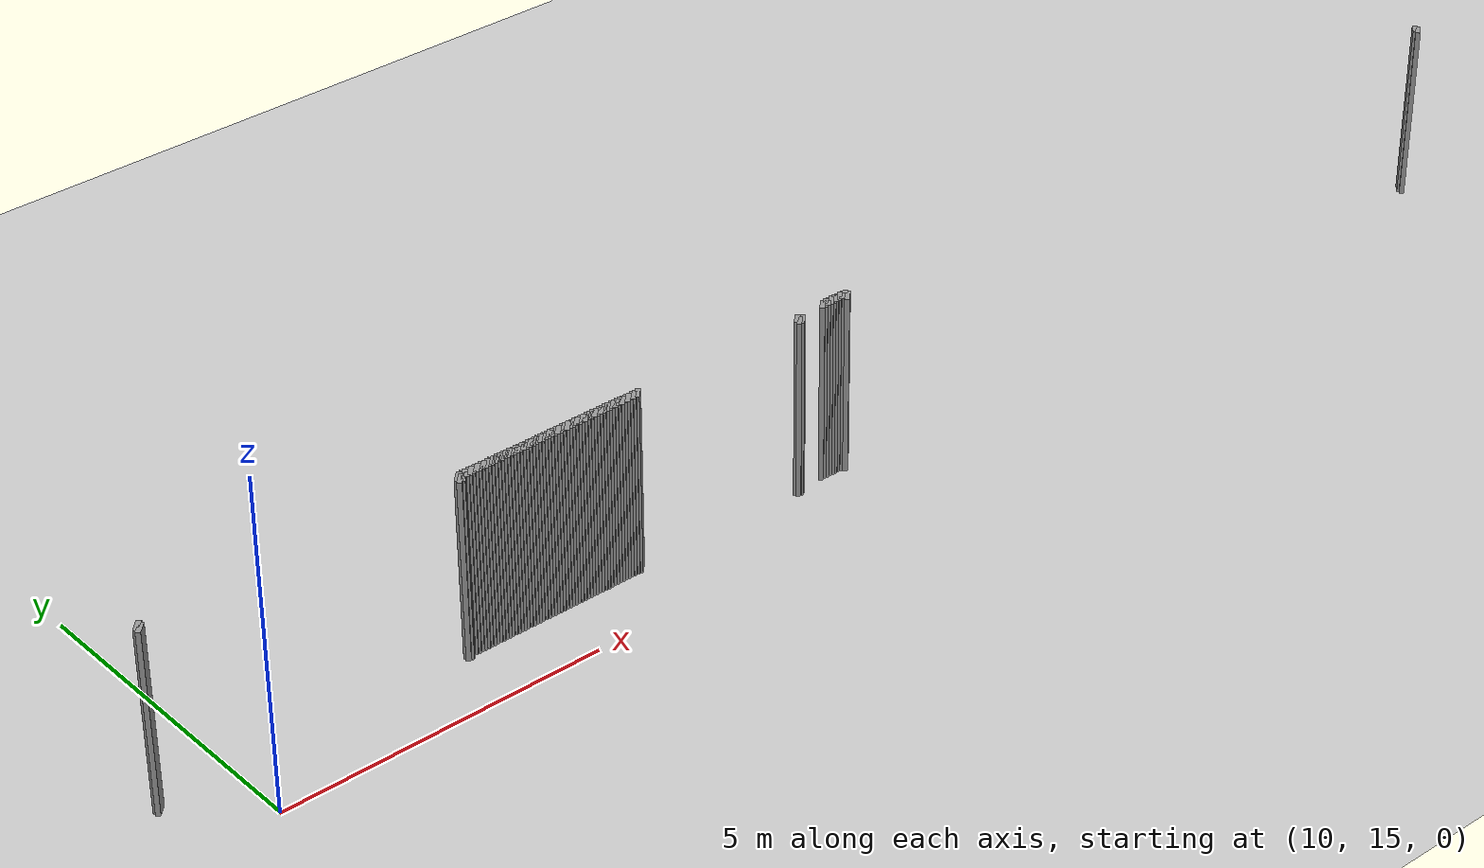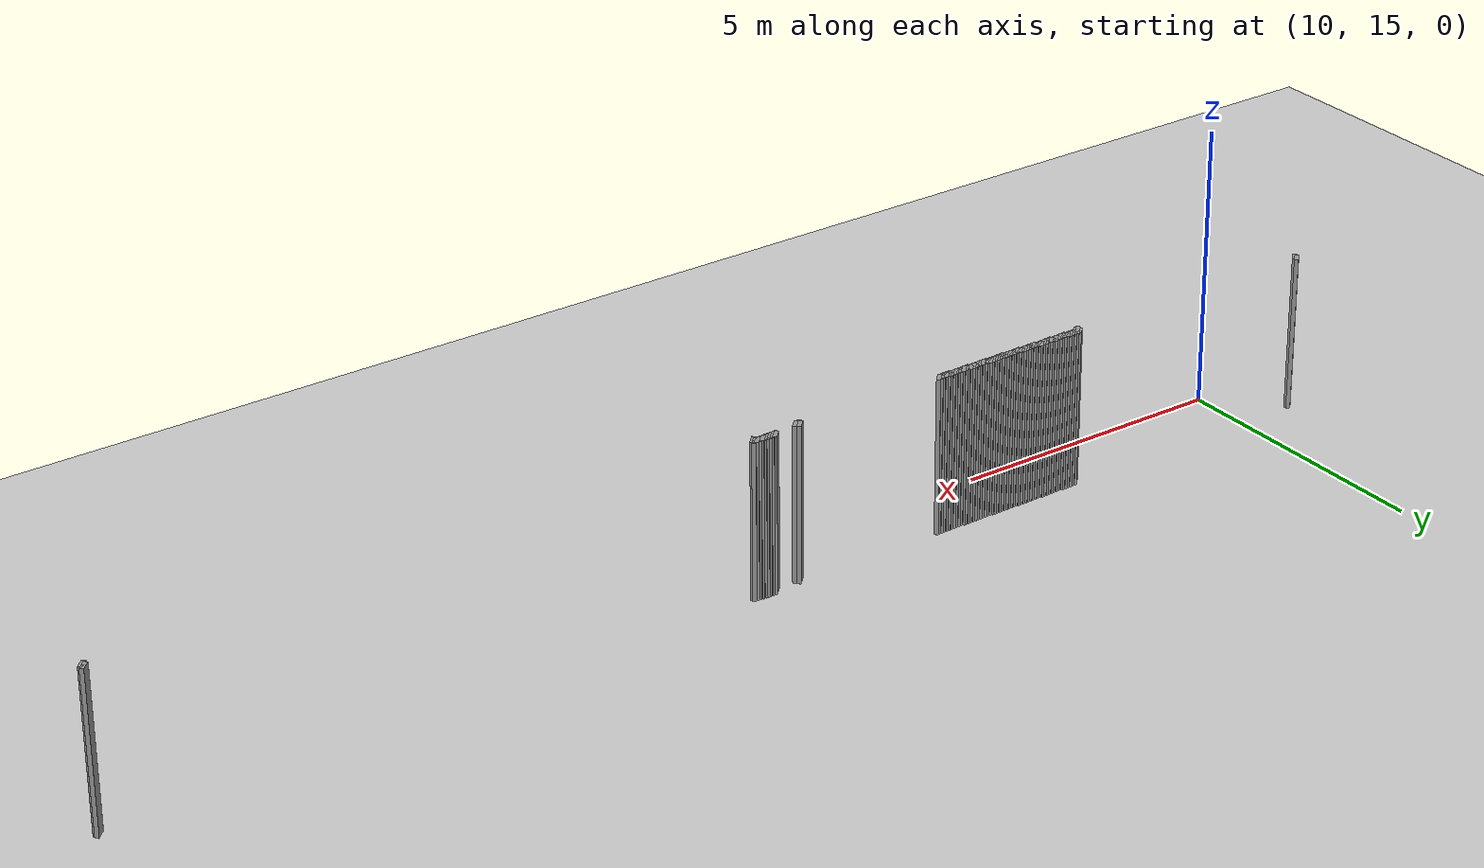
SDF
<sdf version="1.5">
 <world name="default">
  <include><uri>model://ground_plane</uri></include>
  <include><uri>model://sun</uri></include>
  <model name="grey_wall_1183">
   <static>1</static>
   <link name="link">
    <pose>19.8 16.1  1.4 0 0 -0.785398163397</pose>
    <collision name="collision"><geometry><box><size>0.0707106781187 .2  2.8</size></box></geometry></collision>
    <visual name="visual">
     <cast_shadows>0</cast_shadows>
     <geometry><box><size>0.0707106781187 .2  2.8</size></box></geometry>
     <material>
      <script>
       <uri>model://grey_wall/materials/scripts</uri>
       <uri>model://grey_wall/materials/textures</uri>
       <name>vrc/grey_wall</name>
      </script>
     </material>
    </visual>
   </link>
  </model>
  <model name="grey_wall_1184">
   <static>1</static>
   <link name="link">
    <pose>19.85 16.1  1.4 0 0 -0.785398163397</pose>
    <collision name="collision"><geometry><box><size>0.0707106781187 .2  2.8</size></box></geometry></collision>
    <visual name="visual">
     <cast_shadows>0</cast_shadows>
     <geometry><box><size>0.0707106781187 .2  2.8</size></box></geometry>
     <material>
      <script>
       <uri>model://grey_wall/materials/scripts</uri>
       <uri>model://grey_wall/materials/textures</uri>
       <name>vrc/grey_wall</name>
      </script>
     </material>
    </visual>
   </link>
  </model>
  <model name="grey_wall_1185">
   <static>1</static>
   <link name="link">
    <pose>19.9 16.1  1.4 0 0 -0.785398163397</pose>
    <collision name="collision"><geometry><box><size>0.0707106781187 .2  2.8</size></box></geometry></collision>
    <visual name="visual">
     <cast_shadows>0</cast_shadows>
     <geometry><box><size>0.0707106781187 .2  2.8</size></box></geometry>
     <material>
      <script>
       <uri>model://grey_wall/materials/scripts</uri>
       <uri>model://grey_wall/materials/textures</uri>
       <name>vrc/grey_wall</name>
      </script>
     </material>
    </visual>
   </link>
  </model>
  <model name="grey_wall_1186">
   <static>1</static>
   <link name="link">
    <pose>19.95 16.1  1.4 0 0 -0.785398163397</pose>
    <collision name="collision"><geometry><box><size>0.0707106781187 .2  2.8</size></box></geometry></collision>
    <visual name="visual">
     <cast_shadows>0</cast_shadows>
     <geometry><box><size>0.0707106781187 .2  2.8</size></box></geometry>
     <material>
      <script>
       <uri>model://grey_wall/materials/scripts</uri>
       <uri>model://grey_wall/materials/textures</uri>
       <name>vrc/grey_wall</name>
      </script>
     </material>
    </visual>
   </link>
  </model>
  <model name="grey_wall_1187">
   <static>1</static>
   <link name="link">
    <pose>20.0 16.1  1.4 0 0 -0.785398163397</pose>
    <collision name="collision"><geometry><box><size>0.0707106781187 .2  2.8</size></box></geometry></collision>
    <visual name="visual">
     <cast_shadows>0</cast_shadows>
     <geometry><box><size>0.0707106781187 .2  2.8</size></box></geometry>
     <material>
      <script>
       <uri>model://grey_wall/materials/scripts</uri>
       <uri>model://grey_wall/materials/textures</uri>
       <name>vrc/grey_wall</name>
      </script>
     </material>
    </visual>
   </link>
  </model>
  <model name="grey_wall_1188">
   <static>1</static>
   <link name="link">
    <pose>20.05 16.1  1.4 0 0 -0.785398163397</pose>
    <collision name="collision"><geometry><box><size>0.0707106781187 .2  2.8</size></box></geometry></collision>
    <visual name="visual">
     <cast_shadows>0</cast_shadows>
     <geometry><box><size>0.0707106781187 .2  2.8</size></box></geometry>
     <material>
      <script>
       <uri>model://grey_wall/materials/scripts</uri>
       <uri>model://grey_wall/materials/textures</uri>
       <name>vrc/grey_wall</name>
      </script>
     </material>
    </visual>
   </link>
  </model>
  <model name="grey_wall_1189">
   <static>1</static>
   <link name="link">
    <pose>20.1 16.1  1.4 0 0 -0.785398163397</pose>
    <collision name="collision"><geometry><box><size>0.0707106781187 .2  2.8</size></box></geometry></collision>
    <visual name="visual">
     <cast_shadows>0</cast_shadows>
     <geometry><box><size>0.0707106781187 .2  2.8</size></box></geometry>
     <material>
      <script>
       <uri>model://grey_wall/materials/scripts</uri>
       <uri>model://grey_wall/materials/textures</uri>
       <name>vrc/grey_wall</name>
      </script>
     </material>
    </visual>
   </link>
  </model>
  <model name="grey_wall_1190">
   <static>1</static>
   <link name="link">
    <pose>20.15 16.1  1.4 0 0 -0.785398163397</pose>
    <collision name="collision"><geometry><box><size>0.0707106781187 .2  2.8</size></box></geometry></collision>
    <visual name="visual">
     <cast_shadows>0</cast_shadows>
     <geometry><box><size>0.0707106781187 .2  2.8</size></box></geometry>
     <material>
      <script>
       <uri>model://grey_wall/materials/scripts</uri>
       <uri>model://grey_wall/materials/textures</uri>
       <name>vrc/grey_wall</name>
      </script>
     </material>
    </visual>
   </link>
  </model>
  <model name="grey_wall_1191">
   <static>1</static>
   <link name="link">
    <pose>20.2 16.1  1.4 0 0 -0.785398163397</pose>
    <collision name="collision"><geometry><box><size>0.0707106781187 .2  2.8</size></box></geometry></collision>
    <visual name="visual">
     <cast_shadows>0</cast_shadows>
     <geometry><box><size>0.0707106781187 .2  2.8</size></box></geometry>
     <material>
      <script>
       <uri>model://grey_wall/materials/scripts</uri>
       <uri>model://grey_wall/materials/textures</uri>
       <name>vrc/grey_wall</name>
      </script>
     </material>
    </visual>
   </link>
  </model>
  <model name="grey_wall_1192">
   <static>1</static>
   <link name="link">
    <pose>31.75 16.1  1.4 0 0 -0.785398163397</pose>
    <collision name="collision"><geometry><box><size>0.0707106781187 .2  2.8</size></box></geometry></collision>
    <visual name="visual">
     <cast_shadows>0</cast_shadows>
     <geometry><box><size>0.0707106781187 .2  2.8</size></box></geometry>
     <material>
      <script>
       <uri>model://grey_wall/materials/scripts</uri>
       <uri>model://grey_wall/materials/textures</uri>
       <name>vrc/grey_wall</name>
      </script>
     </material>
    </visual>
   </link>
  </model>
  <model name="grey_wall_1193">
   <static>1</static>
   <link name="link">
    <pose>8.9 16.05  1.4 0 0 -0.785398163397</pose>
    <collision name="collision"><geometry><box><size>0.0707106781187 .2  2.8</size></box></geometry></collision>
    <visual name="visual">
     <cast_shadows>0</cast_shadows>
     <geometry><box><size>0.0707106781187 .2  2.8</size></box></geometry>
     <material>
      <script>
       <uri>model://grey_wall/materials/scripts</uri>
       <uri>model://grey_wall/materials/textures</uri>
       <name>vrc/grey_wall</name>
      </script>
     </material>
    </visual>
   </link>
  </model>
  <model name="grey_wall_1194">
   <static>1</static>
   <link name="link">
    <pose>13.65 16.05  1.4 0 0 -0.785398163397</pose>
    <collision name="collision"><geometry><box><size>0.0707106781187 .2  2.8</size></box></geometry></collision>
    <visual name="visual">
     <cast_shadows>0</cast_shadows>
     <geometry><box><size>0.0707106781187 .2  2.8</size></box></geometry>
     <material>
      <script>
       <uri>model://grey_wall/materials/scripts</uri>
       <uri>model://grey_wall/materials/textures</uri>
       <name>vrc/grey_wall</name>
      </script>
     </material>
    </visual>
   </link>
  </model>
  <model name="grey_wall_1195">
   <static>1</static>
   <link name="link">
    <pose>13.7 16.05  1.4 0 0 -0.785398163397</pose>
    <collision name="collision"><geometry><box><size>0.0707106781187 .2  2.8</size></box></geometry></collision>
    <visual name="visual">
     <cast_shadows>0</cast_shadows>
     <geometry><box><size>0.0707106781187 .2  2.8</size></box></geometry>
     <material>
      <script>
       <uri>model://grey_wall/materials/scripts</uri>
       <uri>model://grey_wall/materials/textures</uri>
       <name>vrc/grey_wall</name>
      </script>
     </material>
    </visual>
   </link>
  </model>
  <model name="grey_wall_1196">
   <static>1</static>
   <link name="link">
    <pose>13.75 16.05  1.4 0 0 -0.785398163397</pose>
    <collision name="collision"><geometry><box><size>0.0707106781187 .2  2.8</size></box></geometry></collision>
    <visual name="visual">
     <cast_shadows>0</cast_shadows>
     <geometry><box><size>0.0707106781187 .2  2.8</size></box></geometry>
     <material>
      <script>
       <uri>model://grey_wall/materials/scripts</uri>
       <uri>model://grey_wall/materials/textures</uri>
       <name>vrc/grey_wall</name>
      </script>
     </material>
    </visual>
   </link>
  </model>
  <model name="grey_wall_1197">
   <static>1</static>
   <link name="link">
    <pose>13.8 16.05  1.4 0 0 -0.785398163397</pose>
    <collision name="collision"><geometry><box><size>0.0707106781187 .2  2.8</size></box></geometry></collision>
    <visual name="visual">
     <cast_shadows>0</cast_shadows>
     <geometry><box><size>0.0707106781187 .2  2.8</size></box></geometry>
     <material>
      <script>
       <uri>model://grey_wall/materials/scripts</uri>
       <uri>model://grey_wall/materials/textures</uri>
       <name>vrc/grey_wall</name>
      </script>
     </material>
    </visual>
   </link>
  </model>
  <model name="grey_wall_1198">
   <static>1</static>
   <link name="link">
    <pose>13.85 16.05  1.4 0 0 -0.785398163397</pose>
    <collision name="collision"><geometry><box><size>0.0707106781187 .2  2.8</size></box></geometry></collision>
    <visual name="visual">
     <cast_shadows>0</cast_shadows>
     <geometry><box><size>0.0707106781187 .2  2.8</size></box></geometry>
     <material>
      <script>
       <uri>model://grey_wall/materials/scripts</uri>
       <uri>model://grey_wall/materials/textures</uri>
       <name>vrc/grey_wall</name>
      </script>
     </material>
    </visual>
   </link>
  </model>
  <model name="grey_wall_1199">
   <static>1</static>
   <link name="link">
    <pose>13.9 16.05  1.4 0 0 -0.785398163397</pose>
    <collision name="collision"><geometry><box><size>0.0707106781187 .2  2.8</size></box></geometry></collision>
    <visual name="visual">
     <cast_shadows>0</cast_shadows>
     <geometry><box><size>0.0707106781187 .2  2.8</size></box></geometry>
     <material>
      <script>
       <uri>model://grey_wall/materials/scripts</uri>
       <uri>model://grey_wall/materials/textures</uri>
       <name>vrc/grey_wall</name>
      </script>
     </material>
    </visual>
   </link>
  </model>
  <model name="grey_wall_1200">
   <static>1</static>
   <link name="link">
    <pose>13.95 16.05  1.4 0 0 -0.785398163397</pose>
    <collision name="collision"><geometry><box><size>0.0707106781187 .2  2.8</size></box></geometry></collision>
    <visual name="visual">
     <cast_shadows>0</cast_shadows>
     <geometry><box><size>0.0707106781187 .2  2.8</size></box></geometry>
     <material>
      <script>
       <uri>model://grey_wall/materials/scripts</uri>
       <uri>model://grey_wall/materials/textures</uri>
       <name>vrc/grey_wall</name>
      </script>
     </material>
    </visual>
   </link>
  </model>
  <model name="grey_wall_1201">
   <static>1</static>
   <link name="link">
    <pose>14.0 16.05  1.4 0 0 -0.785398163397</pose>
    <collision name="collision"><geometry><box><size>0.0707106781187 .2  2.8</size></box></geometry></collision>
    <visual name="visual">
     <cast_shadows>0</cast_shadows>
     <geometry><box><size>0.0707106781187 .2  2.8</size></box></geometry>
     <material>
      <script>
       <uri>model://grey_wall/materials/scripts</uri>
       <uri>model://grey_wall/materials/textures</uri>
       <name>vrc/grey_wall</name>
      </script>
     </material>
    </visual>
   </link>
  </model>
  <model name="grey_wall_1202">
   <static>1</static>
   <link name="link">
    <pose>14.05 16.05  1.4 0 0 -0.785398163397</pose>
    <collision name="collision"><geometry><box><size>0.0707106781187 .2  2.8</size></box></geometry></collision>
    <visual name="visual">
     <cast_shadows>0</cast_shadows>
     <geometry><box><size>0.0707106781187 .2  2.8</size></box></geometry>
     <material>
      <script>
       <uri>model://grey_wall/materials/scripts</uri>
       <uri>model://grey_wall/materials/textures</uri>
       <name>vrc/grey_wall</name>
      </script>
     </material>
    </visual>
   </link>
  </model>
  <model name="grey_wall_1203">
   <static>1</static>
   <link name="link">
    <pose>14.1 16.05  1.4 0 0 -0.785398163397</pose>
    <collision name="collision"><geometry><box><size>0.0707106781187 .2  2.8</size></box></geometry></collision>
    <visual name="visual">
     <cast_shadows>0</cast_shadows>
     <geometry><box><size>0.0707106781187 .2  2.8</size></box></geometry>
     <material>
      <script>
       <uri>model://grey_wall/materials/scripts</uri>
       <uri>model://grey_wall/materials/textures</uri>
       <name>vrc/grey_wall</name>
      </script>
     </material>
    </visual>
   </link>
  </model>
  <model name="grey_wall_1204">
   <static>1</static>
   <link name="link">
    <pose>14.15 16.05  1.4 0 0 -0.785398163397</pose>
    <collision name="collision"><geometry><box><size>0.0707106781187 .2  2.8</size></box></geometry></collision>
    <visual name="visual">
     <cast_shadows>0</cast_shadows>
     <geometry><box><size>0.0707106781187 .2  2.8</size></box></geometry>
     <material>
      <script>
       <uri>model://grey_wall/materials/scripts</uri>
       <uri>model://grey_wall/materials/textures</uri>
       <name>vrc/grey_wall</name>
      </script>
     </material>
    </visual>
   </link>
  </model>
  <model name="grey_wall_1205">
   <static>1</static>
   <link name="link">
    <pose>14.2 16.05  1.4 0 0 -0.785398163397</pose>
    <collision name="collision"><geometry><box><size>0.0707106781187 .2  2.8</size></box></geometry></collision>
    <visual name="visual">
     <cast_shadows>0</cast_shadows>
     <geometry><box><size>0.0707106781187 .2  2.8</size></box></geometry>
     <material>
      <script>
       <uri>model://grey_wall/materials/scripts</uri>
       <uri>model://grey_wall/materials/textures</uri>
       <name>vrc/grey_wall</name>
      </script>
     </material>
    </visual>
   </link>
  </model>
  <model name="grey_wall_1206">
   <static>1</static>
   <link name="link">
    <pose>14.25 16.05  1.4 0 0 -0.785398163397</pose>
    <collision name="collision"><geometry><box><size>0.0707106781187 .2  2.8</size></box></geometry></collision>
    <visual name="visual">
     <cast_shadows>0</cast_shadows>
     <geometry><box><size>0.0707106781187 .2  2.8</size></box></geometry>
     <material>
      <script>
       <uri>model://grey_wall/materials/scripts</uri>
       <uri>model://grey_wall/materials/textures</uri>
       <name>vrc/grey_wall</name>
      </script>
     </material>
    </visual>
   </link>
  </model>
  <model name="grey_wall_1207">
   <static>1</static>
   <link name="link">
    <pose>14.3 16.05  1.4 0 0 -0.785398163397</pose>
    <collision name="collision"><geometry><box><size>0.0707106781187 .2  2.8</size></box></geometry></collision>
    <visual name="visual">
     <cast_shadows>0</cast_shadows>
     <geometry><box><size>0.0707106781187 .2  2.8</size></box></geometry>
     <material>
      <script>
       <uri>model://grey_wall/materials/scripts</uri>
       <uri>model://grey_wall/materials/textures</uri>
       <name>vrc/grey_wall</name>
      </script>
     </material>
    </visual>
   </link>
  </model>
  <model name="grey_wall_1208">
   <static>1</static>
   <link name="link">
    <pose>14.35 16.05  1.4 0 0 -0.785398163397</pose>
    <collision name="collision"><geometry><box><size>0.0707106781187 .2  2.8</size></box></geometry></collision>
    <visual name="visual">
     <cast_shadows>0</cast_shadows>
     <geometry><box><size>0.0707106781187 .2  2.8</size></box></geometry>
     <material>
      <script>
       <uri>model://grey_wall/materials/scripts</uri>
       <uri>model://grey_wall/materials/textures</uri>
       <name>vrc/grey_wall</name>
      </script>
     </material>
    </visual>
   </link>
  </model>
  <model name="grey_wall_1209">
   <static>1</static>
   <link name="link">
    <pose>14.4 16.05  1.4 0 0 -0.785398163397</pose>
    <collision name="collision"><geometry><box><size>0.0707106781187 .2  2.8</size></box></geometry></collision>
    <visual name="visual">
     <cast_shadows>0</cast_shadows>
     <geometry><box><size>0.0707106781187 .2  2.8</size></box></geometry>
     <material>
      <script>
       <uri>model://grey_wall/materials/scripts</uri>
       <uri>model://grey_wall/materials/textures</uri>
       <name>vrc/grey_wall</name>
      </script>
     </material>
    </visual>
   </link>
  </model>
  <model name="grey_wall_1210">
   <static>1</static>
   <link name="link">
    <pose>14.45 16.05  1.4 0 0 -0.785398163397</pose>
    <collision name="collision"><geometry><box><size>0.0707106781187 .2  2.8</size></box></geometry></collision>
    <visual name="visual">
     <cast_shadows>0</cast_shadows>
     <geometry><box><size>0.0707106781187 .2  2.8</size></box></geometry>
     <material>
      <script>
       <uri>model://grey_wall/materials/scripts</uri>
       <uri>model://grey_wall/materials/textures</uri>
       <name>vrc/grey_wall</name>
      </script>
     </material>
    </visual>
   </link>
  </model>
  <model name="grey_wall_1211">
   <static>1</static>
   <link name="link">
    <pose>14.5 16.05  1.4 0 0 -0.785398163397</pose>
    <collision name="collision"><geometry><box><size>0.0707106781187 .2  2.8</size></box></geometry></collision>
    <visual name="visual">
     <cast_shadows>0</cast_shadows>
     <geometry><box><size>0.0707106781187 .2  2.8</size></box></geometry>
     <material>
      <script>
       <uri>model://grey_wall/materials/scripts</uri>
       <uri>model://grey_wall/materials/textures</uri>
       <name>vrc/grey_wall</name>
      </script>
     </material>
    </visual>
   </link>
  </model>
  <model name="grey_wall_1212">
   <static>1</static>
   <link name="link">
    <pose>14.55 16.05  1.4 0 0 -0.785398163397</pose>
    <collision name="collision"><geometry><box><size>0.0707106781187 .2  2.8</size></box></geometry></collision>
    <visual name="visual">
     <cast_shadows>0</cast_shadows>
     <geometry><box><size>0.0707106781187 .2  2.8</size></box></geometry>
     <material>
      <script>
       <uri>model://grey_wall/materials/scripts</uri>
       <uri>model://grey_wall/materials/textures</uri>
       <name>vrc/grey_wall</name>
      </script>
     </material>
    </visual>
   </link>
  </model>
  <model name="grey_wall_1213">
   <static>1</static>
   <link name="link">
    <pose>14.6 16.05  1.4 0 0 -0.785398163397</pose>
    <collision name="collision"><geometry><box><size>0.0707106781187 .2  2.8</size></box></geometry></collision>
    <visual name="visual">
     <cast_shadows>0</cast_shadows>
     <geometry><box><size>0.0707106781187 .2  2.8</size></box></geometry>
     <material>
      <script>
       <uri>model://grey_wall/materials/scripts</uri>
       <uri>model://grey_wall/materials/textures</uri>
       <name>vrc/grey_wall</name>
      </script>
     </material>
    </visual>
   </link>
  </model>
  <model name="grey_wall_1214">
   <static>1</static>
   <link name="link">
    <pose>14.65 16.05  1.4 0 0 -0.785398163397</pose>
    <collision name="collision"><geometry><box><size>0.0707106781187 .2  2.8</size></box></geometry></collision>
    <visual name="visual">
     <cast_shadows>0</cast_shadows>
     <geometry><box><size>0.0707106781187 .2  2.8</size></box></geometry>
     <material>
      <script>
       <uri>model://grey_wall/materials/scripts</uri>
       <uri>model://grey_wall/materials/textures</uri>
       <name>vrc/grey_wall</name>
      </script>
     </material>
    </visual>
   </link>
  </model>
  <model name="grey_wall_1215">
   <static>1</static>
   <link name="link">
    <pose>14.7 16.05  1.4 0 0 -0.785398163397</pose>
    <collision name="collision"><geometry><box><size>0.0707106781187 .2  2.8</size></box></geometry></collision>
    <visual name="visual">
     <cast_shadows>0</cast_shadows>
     <geometry><box><size>0.0707106781187 .2  2.8</size></box></geometry>
     <material>
      <script>
       <uri>model://grey_wall/materials/scripts</uri>
       <uri>model://grey_wall/materials/textures</uri>
       <name>vrc/grey_wall</name>
      </script>
     </material>
    </visual>
   </link>
  </model>
  <model name="grey_wall_1216">
   <static>1</static>
   <link name="link">
    <pose>14.75 16.05  1.4 0 0 -0.785398163397</pose>
    <collision name="collision"><geometry><box><size>0.0707106781187 .2  2.8</size></box></geometry></collision>
    <visual name="visual">
     <cast_shadows>0</cast_shadows>
     <geometry><box><size>0.0707106781187 .2  2.8</size></box></geometry>
     <material>
      <script>
       <uri>model://grey_wall/materials/scripts</uri>
       <uri>model://grey_wall/materials/textures</uri>
       <name>vrc/grey_wall</name>
      </script>
     </material>
    </visual>
   </link>
  </model>
  <model name="grey_wall_1217">
   <static>1</static>
   <link name="link">
    <pose>14.8 16.05  1.4 0 0 -0.785398163397</pose>
    <collision name="collision"><geometry><box><size>0.0707106781187 .2  2.8</size></box></geometry></collision>
    <visual name="visual">
     <cast_shadows>0</cast_shadows>
     <geometry><box><size>0.0707106781187 .2  2.8</size></box></geometry>
     <material>
      <script>
       <uri>model://grey_wall/materials/scripts</uri>
       <uri>model://grey_wall/materials/textures</uri>
       <name>vrc/grey_wall</name>
      </script>
     </material>
    </visual>
   </link>
  </model>
  <model name="grey_wall_1218">
   <static>1</static>
   <link name="link">
    <pose>14.85 16.05  1.4 0 0 -0.785398163397</pose>
    <collision name="collision"><geometry><box><size>0.0707106781187 .2  2.8</size></box></geometry></collision>
    <visual name="visual">
     <cast_shadows>0</cast_shadows>
     <geometry><box><size>0.0707106781187 .2  2.8</size></box></geometry>
     <material>
      <script>
       <uri>model://grey_wall/materials/scripts</uri>
       <uri>model://grey_wall/materials/textures</uri>
       <name>vrc/grey_wall</name>
      </script>
     </material>
    </visual>
   </link>
  </model>
  <model name="grey_wall_1219">
   <static>1</static>
   <link name="link">
    <pose>14.9 16.05  1.4 0 0 -0.785398163397</pose>
    <collision name="collision"><geometry><box><size>0.0707106781187 .2  2.8</size></box></geometry></collision>
    <visual name="visual">
     <cast_shadows>0</cast_shadows>
     <geometry><box><size>0.0707106781187 .2  2.8</size></box></geometry>
     <material>
      <script>
       <uri>model://grey_wall/materials/scripts</uri>
       <uri>model://grey_wall/materials/textures</uri>
       <name>vrc/grey_wall</name>
      </script>
     </material>
    </visual>
   </link>
  </model>
  <model name="grey_wall_1220">
   <static>1</static>
   <link name="link">
    <pose>14.95 16.05  1.4 0 0 -0.785398163397</pose>
    <collision name="collision"><geometry><box><size>0.0707106781187 .2  2.8</size></box></geometry></collision>
    <visual name="visual">
     <cast_shadows>0</cast_shadows>
     <geometry><box><size>0.0707106781187 .2  2.8</size></box></geometry>
     <material>
      <script>
       <uri>model://grey_wall/materials/scripts</uri>
       <uri>model://grey_wall/materials/textures</uri>
       <name>vrc/grey_wall</name>
      </script>
     </material>
    </visual>
   </link>
  </model>
  <model name="grey_wall_1221">
   <static>1</static>
   <link name="link">
    <pose>15.0 16.05  1.4 0 0 -0.785398163397</pose>
    <collision name="collision"><geometry><box><size>0.0707106781187 .2  2.8</size></box></geometry></collision>
    <visual name="visual">
     <cast_shadows>0</cast_shadows>
     <geometry><box><size>0.0707106781187 .2  2.8</size></box></geometry>
     <material>
      <script>
       <uri>model://grey_wall/materials/scripts</uri>
       <uri>model://grey_wall/materials/textures</uri>
       <name>vrc/grey_wall</name>
      </script>
     </material>
    </visual>
   </link>
  </model>
  <model name="grey_wall_1222">
   <static>1</static>
   <link name="link">
    <pose>15.05 16.05  1.4 0 0 -0.785398163397</pose>
    <collision name="collision"><geometry><box><size>0.0707106781187 .2  2.8</size></box></geometry></collision>
    <visual name="visual">
     <cast_shadows>0</cast_shadows>
     <geometry><box><size>0.0707106781187 .2  2.8</size></box></geometry>
     <material>
      <script>
       <uri>model://grey_wall/materials/scripts</uri>
       <uri>model://grey_wall/materials/textures</uri>
       <name>vrc/grey_wall</name>
      </script>
     </material>
    </visual>
   </link>
  </model>
  <model name="grey_wall_1223">
   <static>1</static>
   <link name="link">
    <pose>15.1 16.05  1.4 0 0 -0.785398163397</pose>
    <collision name="collision"><geometry><box><size>0.0707106781187 .2  2.8</size></box></geometry></collision>
    <visual name="visual">
     <cast_shadows>0</cast_shadows>
     <geometry><box><size>0.0707106781187 .2  2.8</size></box></geometry>
     <material>
      <script>
       <uri>model://grey_wall/materials/scripts</uri>
       <uri>model://grey_wall/materials/textures</uri>
       <name>vrc/grey_wall</name>
      </script>
     </material>
    </visual>
   </link>
  </model>
  <model name="grey_wall_1224">
   <static>1</static>
   <link name="link">
    <pose>15.15 16.05  1.4 0 0 -0.785398163397</pose>
    <collision name="collision"><geometry><box><size>0.0707106781187 .2  2.8</size></box></geometry></collision>
    <visual name="visual">
     <cast_shadows>0</cast_shadows>
     <geometry><box><size>0.0707106781187 .2  2.8</size></box></geometry>
     <material>
      <script>
       <uri>model://grey_wall/materials/scripts</uri>
       <uri>model://grey_wall/materials/textures</uri>
       <name>vrc/grey_wall</name>
      </script>
     </material>
    </visual>
   </link>
  </model>
  <model name="grey_wall_1225">
   <static>1</static>
   <link name="link">
    <pose>15.2 16.05  1.4 0 0 -0.785398163397</pose>
    <collision name="collision"><geometry><box><size>0.0707106781187 .2  2.8</size></box></geometry></collision>
    <visual name="visual">
     <cast_shadows>0</cast_shadows>
     <geometry><box><size>0.0707106781187 .2  2.8</size></box></geometry>
     <material>
      <script>
       <uri>model://grey_wall/materials/scripts</uri>
       <uri>model://grey_wall/materials/textures</uri>
       <name>vrc/grey_wall</name>
      </script>
     </material>
    </visual>
   </link>
  </model>
  <model name="grey_wall_1226">
   <static>1</static>
   <link name="link">
    <pose>15.25 16.05  1.4 0 0 -0.785398163397</pose>
    <collision name="collision"><geometry><box><size>0.0707106781187 .2  2.8</size></box></geometry></collision>
    <visual name="visual">
     <cast_shadows>0</cast_shadows>
     <geometry><box><size>0.0707106781187 .2  2.8</size></box></geometry>
     <material>
      <script>
       <uri>model://grey_wall/materials/scripts</uri>
       <uri>model://grey_wall/materials/textures</uri>
       <name>vrc/grey_wall</name>
      </script>
     </material>
    </visual>
   </link>
  </model>
  <model name="grey_wall_1227">
   <static>1</static>
   <link name="link">
    <pose>15.3 16.05  1.4 0 0 -0.785398163397</pose>
    <collision name="collision"><geometry><box><size>0.0707106781187 .2  2.8</size></box></geometry></collision>
    <visual name="visual">
     <cast_shadows>0</cast_shadows>
     <geometry><box><size>0.0707106781187 .2  2.8</size></box></geometry>
     <material>
      <script>
       <uri>model://grey_wall/materials/scripts</uri>
       <uri>model://grey_wall/materials/textures</uri>
       <name>vrc/grey_wall</name>
      </script>
     </material>
    </visual>
   </link>
  </model>
  <model name="grey_wall_1228">
   <static>1</static>
   <link name="link">
    <pose>15.35 16.05  1.4 0 0 -0.785398163397</pose>
    <collision name="collision"><geometry><box><size>0.0707106781187 .2  2.8</size></box></geometry></collision>
    <visual name="visual">
     <cast_shadows>0</cast_shadows>
     <geometry><box><size>0.0707106781187 .2  2.8</size></box></geometry>
     <material>
      <script>
       <uri>model://grey_wall/materials/scripts</uri>
       <uri>model://grey_wall/materials/textures</uri>
       <name>vrc/grey_wall</name>
      </script>
     </material>
    </visual>
   </link>
  </model>
  <model name="grey_wall_1229">
   <static>1</static>
   <link name="link">
    <pose>15.4 16.05  1.4 0 0 -0.785398163397</pose>
    <collision name="collision"><geometry><box><size>0.0707106781187 .2  2.8</size></box></geometry></collision>
    <visual name="visual">
     <cast_shadows>0</cast_shadows>
     <geometry><box><size>0.0707106781187 .2  2.8</size></box></geometry>
     <material>
      <script>
       <uri>model://grey_wall/materials/scripts</uri>
       <uri>model://grey_wall/materials/textures</uri>
       <name>vrc/grey_wall</name>
      </script>
     </material>
    </visual>
   </link>
  </model>
  <model name="grey_wall_1230">
   <static>1</static>
   <link name="link">
    <pose>15.45 16.05  1.4 0 0 -0.785398163397</pose>
    <collision name="collision"><geometry><box><size>0.0707106781187 .2  2.8</size></box></geometry></collision>
    <visual name="visual">
     <cast_shadows>0</cast_shadows>
     <geometry><box><size>0.0707106781187 .2  2.8</size></box></geometry>
     <material>
      <script>
       <uri>model://grey_wall/materials/scripts</uri>
       <uri>model://grey_wall/materials/textures</uri>
       <name>vrc/grey_wall</name>
      </script>
     </material>
    </visual>
   </link>
  </model>
  <model name="grey_wall_1231">
   <static>1</static>
   <link name="link">
    <pose>15.5 16.05  1.4 0 0 -0.785398163397</pose>
    <collision name="collision"><geometry><box><size>0.0707106781187 .2  2.8</size></box></geometry></collision>
    <visual name="visual">
     <cast_shadows>0</cast_shadows>
     <geometry><box><size>0.0707106781187 .2  2.8</size></box></geometry>
     <material>
      <script>
       <uri>model://grey_wall/materials/scripts</uri>
       <uri>model://grey_wall/materials/textures</uri>
       <name>vrc/grey_wall</name>
      </script>
     </material>
    </visual>
   </link>
  </model>
  <model name="grey_wall_1232">
   <static>1</static>
   <link name="link">
    <pose>15.55 16.05  1.4 0 0 -0.785398163397</pose>
    <collision name="collision"><geometry><box><size>0.0707106781187 .2  2.8</size></box></geometry></collision>
    <visual name="visual">
     <cast_shadows>0</cast_shadows>
     <geometry><box><size>0.0707106781187 .2  2.8</size></box></geometry>
     <material>
      <script>
       <uri>model://grey_wall/materials/scripts</uri>
       <uri>model://grey_wall/materials/textures</uri>
       <name>vrc/grey_wall</name>
      </script>
     </material>
    </visual>
   </link>
  </model>
  <model name="grey_wall_1233">
   <static>1</static>
   <link name="link">
    <pose>15.6 16.05  1.4 0 0 -0.785398163397</pose>
    <collision name="collision"><geometry><box><size>0.0707106781187 .2  2.8</size></box></geometry></collision>
    <visual name="visual">
     <cast_shadows>0</cast_shadows>
     <geometry><box><size>0.0707106781187 .2  2.8</size></box></geometry>
     <material>
      <script>
       <uri>model://grey_wall/materials/scripts</uri>
       <uri>model://grey_wall/materials/textures</uri>
       <name>vrc/grey_wall</name>
      </script>
     </material>
    </visual>
   </link>
  </model>
  <model name="grey_wall_1234">
   <static>1</static>
   <link name="link">
    <pose>15.65 16.05  1.4 0 0 -0.785398163397</pose>
    <collision name="collision"><geometry><box><size>0.0707106781187 .2  2.8</size></box></geometry></collision>
    <visual name="visual">
     <cast_shadows>0</cast_shadows>
     <geometry><box><size>0.0707106781187 .2  2.8</size></box></geometry>
     <material>
      <script>
       <uri>model://grey_wall/materials/scripts</uri>
       <uri>model://grey_wall/materials/textures</uri>
       <name>vrc/grey_wall</name>
      </script>
     </material>
    </visual>
   </link>
  </model>
  <model name="grey_wall_1235">
   <static>1</static>
   <link name="link">
    <pose>15.7 16.05  1.4 0 0 -0.785398163397</pose>
    <collision name="collision"><geometry><box><size>0.0707106781187 .2  2.8</size></box></geometry></collision>
    <visual name="visual">
     <cast_shadows>0</cast_shadows>
     <geometry><box><size>0.0707106781187 .2  2.8</size></box></geometry>
     <material>
      <script>
       <uri>model://grey_wall/materials/scripts</uri>
       <uri>model://grey_wall/materials/textures</uri>
       <name>vrc/grey_wall</name>
      </script>
     </material>
    </visual>
   </link>
  </model>
  <model name="grey_wall_1236">
   <static>1</static>
   <link name="link">
    <pose>15.75 16.05  1.4 0 0 -0.785398163397</pose>
    <collision name="collision"><geometry><box><size>0.0707106781187 .2  2.8</size></box></geometry></collision>
    <visual name="visual">
     <cast_shadows>0</cast_shadows>
     <geometry><box><size>0.0707106781187 .2  2.8</size></box></geometry>
     <material>
      <script>
       <uri>model://grey_wall/materials/scripts</uri>
       <uri>model://grey_wall/materials/textures</uri>
       <name>vrc/grey_wall</name>
      </script>
     </material>
    </visual>
   </link>
  </model>
  <model name="grey_wall_1237">
   <static>1</static>
   <link name="link">
    <pose>15.8 16.05  1.4 0 0 -0.785398163397</pose>
    <collision name="collision"><geometry><box><size>0.0707106781187 .2  2.8</size></box></geometry></collision>
    <visual name="visual">
     <cast_shadows>0</cast_shadows>
     <geometry><box><size>0.0707106781187 .2  2.8</size></box></geometry>
     <material>
      <script>
       <uri>model://grey_wall/materials/scripts</uri>
       <uri>model://grey_wall/materials/textures</uri>
       <name>vrc/grey_wall</name>
      </script>
     </material>
    </visual>
   </link>
  </model>
  <model name="grey_wall_1238">
   <static>1</static>
   <link name="link">
    <pose>15.85 16.05  1.4 0 0 -0.785398163397</pose>
    <collision name="collision"><geometry><box><size>0.0707106781187 .2  2.8</size></box></geometry></collision>
    <visual name="visual">
     <cast_shadows>0</cast_shadows>
     <geometry><box><size>0.0707106781187 .2  2.8</size></box></geometry>
     <material>
      <script>
       <uri>model://grey_wall/materials/scripts</uri>
       <uri>model://grey_wall/materials/textures</uri>
       <name>vrc/grey_wall</name>
      </script>
     </material>
    </visual>
   </link>
  </model>
  <model name="grey_wall_1239">
   <static>1</static>
   <link name="link">
    <pose>15.9 16.05  1.4 0 0 -0.785398163397</pose>
    <collision name="collision"><geometry><box><size>0.0707106781187 .2  2.8</size></box></geometry></collision>
    <visual name="visual">
     <cast_shadows>0</cast_shadows>
     <geometry><box><size>0.0707106781187 .2  2.8</size></box></geometry>
     <material>
      <script>
       <uri>model://grey_wall/materials/scripts</uri>
       <uri>model://grey_wall/materials/textures</uri>
       <name>vrc/grey_wall</name>
      </script>
     </material>
    </visual>
   </link>
  </model>
  <model name="grey_wall_1240">
   <static>1</static>
   <link name="link">
    <pose>15.95 16.05  1.4 0 0 -0.785398163397</pose>
    <collision name="collision"><geometry><box><size>0.0707106781187 .2  2.8</size></box></geometry></collision>
    <visual name="visual">
     <cast_shadows>0</cast_shadows>
     <geometry><box><size>0.0707106781187 .2  2.8</size></box></geometry>
     <material>
      <script>
       <uri>model://grey_wall/materials/scripts</uri>
       <uri>model://grey_wall/materials/textures</uri>
       <name>vrc/grey_wall</name>
      </script>
     </material>
    </visual>
   </link>
  </model>
  <model name="grey_wall_1241">
   <static>1</static>
   <link name="link">
    <pose>16.0 16.05  1.4 0 0 -0.785398163397</pose>
    <collision name="collision"><geometry><box><size>0.0707106781187 .2  2.8</size></box></geometry></collision>
    <visual name="visual">
     <cast_shadows>0</cast_shadows>
     <geometry><box><size>0.0707106781187 .2  2.8</size></box></geometry>
     <material>
      <script>
       <uri>model://grey_wall/materials/scripts</uri>
       <uri>model://grey_wall/materials/textures</uri>
       <name>vrc/grey_wall</name>
      </script>
     </material>
    </visual>
   </link>
  </model>
  <model name="grey_wall_1242">
   <static>1</static>
   <link name="link">
    <pose>16.05 16.05  1.4 0 0 -0.785398163397</pose>
    <collision name="collision"><geometry><box><size>0.0707106781187 .2  2.8</size></box></geometry></collision>
    <visual name="visual">
     <cast_shadows>0</cast_shadows>
     <geometry><box><size>0.0707106781187 .2  2.8</size></box></geometry>
     <material>
      <script>
       <uri>model://grey_wall/materials/scripts</uri>
       <uri>model://grey_wall/materials/textures</uri>
       <name>vrc/grey_wall</name>
      </script>
     </material>
    </visual>
   </link>
  </model>
  <model name="grey_wall_1243">
   <static>1</static>
   <link name="link">
    <pose>16.1 16.05  1.4 0 0 -0.785398163397</pose>
    <collision name="collision"><geometry><box><size>0.0707106781187 .2  2.8</size></box></geometry></collision>
    <visual name="visual">
     <cast_shadows>0</cast_shadows>
     <geometry><box><size>0.0707106781187 .2  2.8</size></box></geometry>
     <material>
      <script>
       <uri>model://grey_wall/materials/scripts</uri>
       <uri>model://grey_wall/materials/textures</uri>
       <name>vrc/grey_wall</name>
      </script>
     </material>
    </visual>
   </link>
  </model>
  <model name="grey_wall_1244">
   <static>1</static>
   <link name="link">
    <pose>16.15 16.05  1.4 0 0 -0.785398163397</pose>
    <collision name="collision"><geometry><box><size>0.0707106781187 .2  2.8</size></box></geometry></collision>
    <visual name="visual">
     <cast_shadows>0</cast_shadows>
     <geometry><box><size>0.0707106781187 .2  2.8</size></box></geometry>
     <material>
      <script>
       <uri>model://grey_wall/materials/scripts</uri>
       <uri>model://grey_wall/materials/textures</uri>
       <name>vrc/grey_wall</name>
      </script>
     </material>
    </visual>
   </link>
  </model>
  <model name="grey_wall_1245">
   <static>1</static>
   <link name="link">
    <pose>16.2 16.05  1.4 0 0 -0.785398163397</pose>
    <collision name="collision"><geometry><box><size>0.0707106781187 .2  2.8</size></box></geometry></collision>
    <visual name="visual">
     <cast_shadows>0</cast_shadows>
     <geometry><box><size>0.0707106781187 .2  2.8</size></box></geometry>
     <material>
      <script>
       <uri>model://grey_wall/materials/scripts</uri>
       <uri>model://grey_wall/materials/textures</uri>
       <name>vrc/grey_wall</name>
      </script>
     </material>
    </visual>
   </link>
  </model>
  <model name="grey_wall_1246">
   <static>1</static>
   <link name="link">
    <pose>16.25 16.05  1.4 0 0 -0.785398163397</pose>
    <collision name="collision"><geometry><box><size>0.0707106781187 .2  2.8</size></box></geometry></collision>
    <visual name="visual">
     <cast_shadows>0</cast_shadows>
     <geometry><box><size>0.0707106781187 .2  2.8</size></box></geometry>
     <material>
      <script>
       <uri>model://grey_wall/materials/scripts</uri>
       <uri>model://grey_wall/materials/textures</uri>
       <name>vrc/grey_wall</name>
      </script>
     </material>
    </visual>
   </link>
  </model>
  <model name="grey_wall_1247">
   <static>1</static>
   <link name="link">
    <pose>16.3 16.05  1.4 0 0 -0.785398163397</pose>
    <collision name="collision"><geometry><box><size>0.0707106781187 .2  2.8</size></box></geometry></collision>
    <visual name="visual">
     <cast_shadows>0</cast_shadows>
     <geometry><box><size>0.0707106781187 .2  2.8</size></box></geometry>
     <material>
      <script>
       <uri>model://grey_wall/materials/scripts</uri>
       <uri>model://grey_wall/materials/textures</uri>
       <name>vrc/grey_wall</name>
      </script>
     </material>
    </visual>
   </link>
  </model>
  <model name="grey_wall_1248">
   <static>1</static>
   <link name="link">
    <pose>16.35 16.05  1.4 0 0 -0.785398163397</pose>
    <collision name="collision"><geometry><box><size>0.0707106781187 .2  2.8</size></box></geometry></collision>
    <visual name="visual">
     <cast_shadows>0</cast_shadows>
     <geometry><box><size>0.0707106781187 .2  2.8</size></box></geometry>
     <material>
      <script>
       <uri>model://grey_wall/materials/scripts</uri>
       <uri>model://grey_wall/materials/textures</uri>
       <name>vrc/grey_wall</name>
      </script>
     </material>
    </visual>
   </link>
  </model>
  <model name="grey_wall_1249">
   <static>1</static>
   <link name="link">
    <pose>16.4 16.05  1.4 0 0 -0.785398163397</pose>
    <collision name="collision"><geometry><box><size>0.0707106781187 .2  2.8</size></box></geometry></collision>
    <visual name="visual">
     <cast_shadows>0</cast_shadows>
     <geometry><box><size>0.0707106781187 .2  2.8</size></box></geometry>
     <material>
      <script>
       <uri>model://grey_wall/materials/scripts</uri>
       <uri>model://grey_wall/materials/textures</uri>
       <name>vrc/grey_wall</name>
      </script>
     </material>
    </visual>
   </link>
  </model>
  <model name="grey_wall_1250">
   <static>1</static>
   <link name="link">
    <pose>16.45 16.05  1.4 0 0 -0.785398163397</pose>
    <collision name="collision"><geometry><box><size>0.0707106781187 .2  2.8</size></box></geometry></collision>
    <visual name="visual">
     <cast_shadows>0</cast_shadows>
     <geometry><box><size>0.0707106781187 .2  2.8</size></box></geometry>
     <material>
      <script>
       <uri>model://grey_wall/materials/scripts</uri>
       <uri>model://grey_wall/materials/textures</uri>
       <name>vrc/grey_wall</name>
      </script>
     </material>
    </visual>
   </link>
  </model>
  <model name="grey_wall_1251">
   <static>1</static>
   <link name="link">
    <pose>16.5 16.05  1.4 0 0 -0.785398163397</pose>
    <collision name="collision"><geometry><box><size>0.0707106781187 .2  2.8</size></box></geometry></collision>
    <visual name="visual">
     <cast_shadows>0</cast_shadows>
     <geometry><box><size>0.0707106781187 .2  2.8</size></box></geometry>
     <material>
      <script>
       <uri>model://grey_wall/materials/scripts</uri>
       <uri>model://grey_wall/materials/textures</uri>
       <name>vrc/grey_wall</name>
      </script>
     </material>
    </visual>
   </link>
  </model>
  <model name="grey_wall_1252">
   <static>1</static>
   <link name="link">
    <pose>16.55 16.05  1.4 0 0 -0.785398163397</pose>
    <collision name="collision"><geometry><box><size>0.0707106781187 .2  2.8</size></box></geometry></collision>
    <visual name="visual">
     <cast_shadows>0</cast_shadows>
     <geometry><box><size>0.0707106781187 .2  2.8</size></box></geometry>
     <material>
      <script>
       <uri>model://grey_wall/materials/scripts</uri>
       <uri>model://grey_wall/materials/textures</uri>
       <name>vrc/grey_wall</name>
      </script>
     </material>
    </visual>
   </link>
  </model>
  <model name="grey_wall_1253">
   <static>1</static>
   <link name="link">
    <pose>19.3 16.05  1.4 0 0 -0.785398163397</pose>
    <collision name="collision"><geometry><box><size>0.0707106781187 .2  2.8</size></box></geometry></collision>
    <visual name="visual">
     <cast_shadows>0</cast_shadows>
     <geometry><box><size>0.0707106781187 .2  2.8</size></box></geometry>
     <material>
      <script>
       <uri>model://grey_wall/materials/scripts</uri>
       <uri>model://grey_wall/materials/textures</uri>
       <name>vrc/grey_wall</name>
      </script>
     </material>
    </visual>
   </link>
  </model>
  <model name="grey_wall_1254">
   <static>1</static>
   <link name="link">
    <pose>20.2 16.05  1.4 0 0 -0.785398163397</pose>
    <collision name="collision"><geometry><box><size>0.0707106781187 .2  2.8</size></box></geometry></collision>
    <visual name="visual">
     <cast_shadows>0</cast_shadows>
     <geometry><box><size>0.0707106781187 .2  2.8</size></box></geometry>
     <material>
      <script>
       <uri>model://grey_wall/materials/scripts</uri>
       <uri>model://grey_wall/materials/textures</uri>
       <name>vrc/grey_wall</name>
      </script>
     </material>
    </visual>
   </link>
  </model>
  <model name="grey_wall_1255">
   <static>1</static>
   <link name="link">
    <pose>31.75 16.05  1.4 0 0 -0.785398163397</pose>
    <collision name="collision"><geometry><box><size>0.0707106781187 .2  2.8</size></box></geometry></collision>
    <visual name="visual">
     <cast_shadows>0</cast_shadows>
     <geometry><box><size>0.0707106781187 .2  2.8</size></box></geometry>
     <material>
      <script>
       <uri>model://grey_wall/materials/scripts</uri>
       <uri>model://grey_wall/materials/textures</uri>
       <name>vrc/grey_wall</name>
      </script>
     </material>
    </visual>
   </link>
  </model>
  <model name="grey_wall_1256">
   <static>1</static>
   <link name="link">
    <pose>8.9 16.0  1.4 0 0 -0.785398163397</pose>
    <collision name="collision"><geometry><box><size>0.0707106781187 .2  2.8</size></box></geometry></collision>
    <visual name="visual">
     <cast_shadows>0</cast_shadows>
     <geometry><box><size>0.0707106781187 .2  2.8</size></box></geometry>
     <material>
      <script>
       <uri>model://grey_wall/materials/scripts</uri>
       <uri>model://grey_wall/materials/textures</uri>
       <name>vrc/grey_wall</name>
      </script>
     </material>
    </visual>
   </link>
  </model>
  <model name="grey_wall_1257">
   <static>1</static>
   <link name="link">
    <pose>13.65 16.0  1.4 0 0 -0.785398163397</pose>
    <collision name="collision"><geometry><box><size>0.0707106781187 .2  2.8</size></box></geometry></collision>
    <visual name="visual">
     <cast_shadows>0</cast_shadows>
     <geometry><box><size>0.0707106781187 .2  2.8</size></box></geometry>
     <material>
      <script>
       <uri>model://grey_wall/materials/scripts</uri>
       <uri>model://grey_wall/materials/textures</uri>
       <name>vrc/grey_wall</name>
      </script>
     </material>
    </visual>
   </link>
  </model>
  <model name="grey_wall_1258">
   <static>1</static>
   <link name="link">
    <pose>13.7 16.0  1.4 0 0 -0.785398163397</pose>
    <collision name="collision"><geometry><box><size>0.0707106781187 .2  2.8</size></box></geometry></collision>
    <visual name="visual">
     <cast_shadows>0</cast_shadows>
     <geometry><box><size>0.0707106781187 .2  2.8</size></box></geometry>
     <material>
      <script>
       <uri>model://grey_wall/materials/scripts</uri>
       <uri>model://grey_wall/materials/textures</uri>
       <name>vrc/grey_wall</name>
      </script>
     </material>
    </visual>
   </link>
  </model>
  <model name="grey_wall_1259">
   <static>1</static>
   <link name="link">
    <pose>19.3 16.0  1.4 0 0 -0.785398163397</pose>
    <collision name="collision"><geometry><box><size>0.0707106781187 .2  2.8</size></box></geometry></collision>
    <visual name="visual">
     <cast_shadows>0</cast_shadows>
     <geometry><box><size>0.0707106781187 .2  2.8</size></box></geometry>
     <material>
      <script>
       <uri>model://grey_wall/materials/scripts</uri>
       <uri>model://grey_wall/materials/textures</uri>
       <name>vrc/grey_wall</name>
      </script>
     </material>
    </visual>
   </link>
  </model>
  <model name="grey_wall_1260">
   <static>1</static>
   <link name="link">
    <pose>19.35 16.0  1.4 0 0 -0.785398163397</pose>
    <collision name="collision"><geometry><box><size>0.0707106781187 .2  2.8</size></box></geometry></collision>
    <visual name="visual">
     <cast_shadows>0</cast_shadows>
     <geometry><box><size>0.0707106781187 .2  2.8</size></box></geometry>
     <material>
      <script>
       <uri>model://grey_wall/materials/scripts</uri>
       <uri>model://grey_wall/materials/textures</uri>
       <name>vrc/grey_wall</name>
      </script>
     </material>
    </visual>
   </link>
  </model>
 </world>
</sdf>
